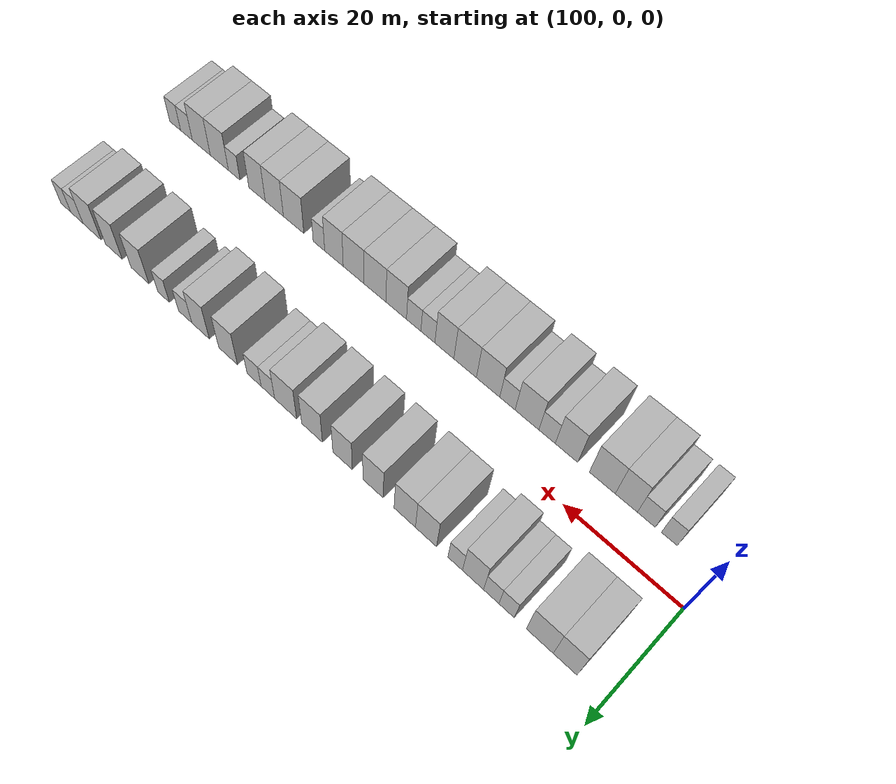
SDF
<sdf version="1.6">
 <world name="default">
  <model name="building_25">
   <static>1</static>
   <pose>106.4064 11.0000 0 0.000000 0.000000 1.570796</pose>
   <link name="link">
    <pose>0 0 4.50 0 0 0</pose>
    <collision name="collision"><geometry><box><size>10.0000 3.8263 9.0000</size></box></geometry></collision>
    <visual name="visual">
     <cast_shadows>0</cast_shadows>
     <geometry><box><size>10.0000 3.8263 9.0000</size></box></geometry>
     <material>
      <script>
       <uri>model://HANNAS_wall/materials/scripts</uri>
       <uri>model://HANNAS_wall/materials/textures</uri>
       <name>vrc/HANNAS_wall</name>
      </script>
     </material>
    </visual>
   </link>
  </model>
  <model name="building_26">
   <static>1</static>
   <pose>110.5225 11.0000 0 0.000000 0.000000 1.570796</pose>
   <link name="link">
    <pose>0 0 4.50 0 0 0</pose>
    <collision name="collision"><geometry><box><size>10.0000 4.4060 9.0000</size></box></geometry></collision>
    <visual name="visual">
     <cast_shadows>0</cast_shadows>
     <geometry><box><size>10.0000 4.4060 9.0000</size></box></geometry>
     <material>
      <script>
       <uri>model://HANNAS_wall/materials/scripts</uri>
       <uri>model://HANNAS_wall/materials/textures</uri>
       <name>vrc/HANNAS_wall</name>
      </script>
     </material>
    </visual>
   </link>
  </model>
  <model name="building_27">
   <static>1</static>
   <pose>116.0191 11.0000 0 0.000000 0.000000 1.570796</pose>
   <link name="link">
    <pose>0 0 3.00 0 0 0</pose>
    <collision name="collision"><geometry><box><size>10.0000 2.5871 6.0000</size></box></geometry></collision>
    <visual name="visual">
     <cast_shadows>0</cast_shadows>
     <geometry><box><size>10.0000 2.5871 6.0000</size></box></geometry>
     <material>
      <script>
       <uri>model://HANNAS_wall/materials/scripts</uri>
       <uri>model://HANNAS_wall/materials/textures</uri>
       <name>vrc/HANNAS_wall</name>
      </script>
     </material>
    </visual>
   </link>
  </model>
  <model name="building_28">
   <static>1</static>
   <pose>118.6194 11.0000 0 0.000000 0.000000 1.570796</pose>
   <link name="link">
    <pose>0 0 3.00 0 0 0</pose>
    <collision name="collision"><geometry><box><size>10.0000 2.6136 6.0000</size></box></geometry></collision>
    <visual name="visual">
     <cast_shadows>0</cast_shadows>
     <geometry><box><size>10.0000 2.6136 6.0000</size></box></geometry>
     <material>
      <script>
       <uri>model://HANNAS_wall/materials/scripts</uri>
       <uri>model://HANNAS_wall/materials/textures</uri>
       <name>vrc/HANNAS_wall</name>
      </script>
     </material>
    </visual>
   </link>
  </model>
  <model name="building_29">
   <static>1</static>
   <pose>121.7357 11.0000 0 0.000000 0.000000 1.570796</pose>
   <link name="link">
    <pose>0 0 4.50 0 0 0</pose>
    <collision name="collision"><geometry><box><size>10.0000 3.6191 9.0000</size></box></geometry></collision>
    <visual name="visual">
     <cast_shadows>0</cast_shadows>
     <geometry><box><size>10.0000 3.6191 9.0000</size></box></geometry>
     <material>
      <script>
       <uri>model://HANNAS_wall/materials/scripts</uri>
       <uri>model://HANNAS_wall/materials/textures</uri>
       <name>vrc/HANNAS_wall</name>
      </script>
     </material>
    </visual>
   </link>
  </model>
  <model name="building_30">
   <static>1</static>
   <pose>124.8204 11.0000 0 0.000000 0.000000 1.570796</pose>
   <link name="link">
    <pose>0 0 3.00 0 0 0</pose>
    <collision name="collision"><geometry><box><size>10.0000 2.5502 6.0000</size></box></geometry></collision>
    <visual name="visual">
     <cast_shadows>0</cast_shadows>
     <geometry><box><size>10.0000 2.5502 6.0000</size></box></geometry>
     <material>
      <script>
       <uri>model://HANNAS_wall/materials/scripts</uri>
       <uri>model://HANNAS_wall/materials/textures</uri>
       <name>vrc/HANNAS_wall</name>
      </script>
     </material>
    </visual>
   </link>
  </model>
  <model name="building_31">
   <static>1</static>
   <pose>129.9866 11.0000 0 0.000000 0.000000 1.570796</pose>
   <link name="link">
    <pose>0 0 4.50 0 0 0</pose>
    <collision name="collision"><geometry><box><size>10.0000 3.7824 9.0000</size></box></geometry></collision>
    <visual name="visual">
     <cast_shadows>0</cast_shadows>
     <geometry><box><size>10.0000 3.7824 9.0000</size></box></geometry>
     <material>
      <script>
       <uri>model://HANNAS_wall/materials/scripts</uri>
       <uri>model://HANNAS_wall/materials/textures</uri>
       <name>vrc/HANNAS_wall</name>
      </script>
     </material>
    </visual>
   </link>
  </model>
  <model name="building_32">
   <static>1</static>
   <pose>133.8148 11.0000 0 0.000000 0.000000 1.570796</pose>
   <link name="link">
    <pose>0 0 4.50 0 0 0</pose>
    <collision name="collision"><geometry><box><size>10.0000 3.8740 9.0000</size></box></geometry></collision>
    <visual name="visual">
     <cast_shadows>0</cast_shadows>
     <geometry><box><size>10.0000 3.8740 9.0000</size></box></geometry>
     <material>
      <script>
       <uri>model://HANNAS_wall/materials/scripts</uri>
       <uri>model://HANNAS_wall/materials/textures</uri>
       <name>vrc/HANNAS_wall</name>
      </script>
     </material>
    </visual>
   </link>
  </model>
  <model name="building_33">
   <static>1</static>
   <pose>139.6373 11.0000 0 0.000000 0.000000 1.570796</pose>
   <link name="link">
    <pose>0 0 4.50 0 0 0</pose>
    <collision name="collision"><geometry><box><size>10.0000 3.7710 9.0000</size></box></geometry></collision>
    <visual name="visual">
     <cast_shadows>0</cast_shadows>
     <geometry><box><size>10.0000 3.7710 9.0000</size></box></geometry>
     <material>
      <script>
       <uri>model://HANNAS_wall/materials/scripts</uri>
       <uri>model://HANNAS_wall/materials/textures</uri>
       <name>vrc/HANNAS_wall</name>
      </script>
     </material>
    </visual>
   </link>
  </model>
  <model name="building_34">
   <static>1</static>
   <pose>145.3760 11.0000 0 0.000000 0.000000 1.570796</pose>
   <link name="link">
    <pose>0 0 4.50 0 0 0</pose>
    <collision name="collision"><geometry><box><size>10.0000 3.7065 9.0000</size></box></geometry></collision>
    <visual name="visual">
     <cast_shadows>0</cast_shadows>
     <geometry><box><size>10.0000 3.7065 9.0000</size></box></geometry>
     <material>
      <script>
       <uri>model://HANNAS_wall/materials/scripts</uri>
       <uri>model://HANNAS_wall/materials/textures</uri>
       <name>vrc/HANNAS_wall</name>
      </script>
     </material>
    </visual>
   </link>
  </model>
  <model name="building_35">
   <static>1</static>
   <pose>151.2617 11.0000 0 0.000000 0.000000 1.570796</pose>
   <link name="link">
    <pose>0 0 4.50 0 0 0</pose>
    <collision name="collision"><geometry><box><size>10.0000 4.0648 9.0000</size></box></geometry></collision>
    <visual name="visual">
     <cast_shadows>0</cast_shadows>
     <geometry><box><size>10.0000 4.0648 9.0000</size></box></geometry>
     <material>
      <script>
       <uri>model://HANNAS_wall/materials/scripts</uri>
       <uri>model://HANNAS_wall/materials/textures</uri>
       <name>vrc/HANNAS_wall</name>
      </script>
     </material>
    </visual>
   </link>
  </model>
  <model name="building_36">
   <static>1</static>
   <pose>156.4872 11.0000 0 0.000000 0.000000 1.570796</pose>
   <link name="link">
    <pose>0 0 4.50 0 0 0</pose>
    <collision name="collision"><geometry><box><size>10.0000 4.3862 9.0000</size></box></geometry></collision>
    <visual name="visual">
     <cast_shadows>0</cast_shadows>
     <geometry><box><size>10.0000 4.3862 9.0000</size></box></geometry>
     <material>
      <script>
       <uri>model://HANNAS_wall/materials/scripts</uri>
       <uri>model://HANNAS_wall/materials/textures</uri>
       <name>vrc/HANNAS_wall</name>
      </script>
     </material>
    </visual>
   </link>
  </model>
  <model name="building_37">
   <static>1</static>
   <pose>160.0484 11.0000 0 0.000000 0.000000 1.570796</pose>
   <link name="link">
    <pose>0 0 3.00 0 0 0</pose>
    <collision name="collision"><geometry><box><size>10.0000 2.7362 6.0000</size></box></geometry></collision>
    <visual name="visual">
     <cast_shadows>0</cast_shadows>
     <geometry><box><size>10.0000 2.7362 6.0000</size></box></geometry>
     <material>
      <script>
       <uri>model://HANNAS_wall/materials/scripts</uri>
       <uri>model://HANNAS_wall/materials/textures</uri>
       <name>vrc/HANNAS_wall</name>
      </script>
     </material>
    </visual>
   </link>
  </model>
  <model name="building_38">
   <static>1</static>
   <pose>162.8559 11.0000 0 0.000000 0.000000 1.570796</pose>
   <link name="link">
    <pose>0 0 3.00 0 0 0</pose>
    <collision name="collision"><geometry><box><size>10.0000 2.8789 6.0000</size></box></geometry></collision>
    <visual name="visual">
     <cast_shadows>0</cast_shadows>
     <geometry><box><size>10.0000 2.8789 6.0000</size></box></geometry>
     <material>
      <script>
       <uri>model://HANNAS_wall/materials/scripts</uri>
       <uri>model://HANNAS_wall/materials/textures</uri>
       <name>vrc/HANNAS_wall</name>
      </script>
     </material>
    </visual>
   </link>
  </model>
  <model name="building_39">
   <static>1</static>
   <pose>168.2533 11.0000 0 0.000000 0.000000 1.570796</pose>
   <link name="link">
    <pose>0 0 4.50 0 0 0</pose>
    <collision name="collision"><geometry><box><size>10.0000 3.9160 9.0000</size></box></geometry></collision>
    <visual name="visual">
     <cast_shadows>0</cast_shadows>
     <geometry><box><size>10.0000 3.9160 9.0000</size></box></geometry>
     <material>
      <script>
       <uri>model://HANNAS_wall/materials/scripts</uri>
       <uri>model://HANNAS_wall/materials/textures</uri>
       <name>vrc/HANNAS_wall</name>
      </script>
     </material>
    </visual>
   </link>
  </model>
  <model name="building_40">
   <static>1</static>
   <pose>174.0844 11.0000 0 0.000000 0.000000 1.570796</pose>
   <link name="link">
    <pose>0 0 4.50 0 0 0</pose>
    <collision name="collision"><geometry><box><size>10.0000 3.7462 9.0000</size></box></geometry></collision>
    <visual name="visual">
     <cast_shadows>0</cast_shadows>
     <geometry><box><size>10.0000 3.7462 9.0000</size></box></geometry>
     <material>
      <script>
       <uri>model://HANNAS_wall/materials/scripts</uri>
       <uri>model://HANNAS_wall/materials/textures</uri>
       <name>vrc/HANNAS_wall</name>
      </script>
     </material>
    </visual>
   </link>
  </model>
  <model name="building_41">
   <static>1</static>
   <pose>177.4131 11.0000 0 0.000000 0.000000 1.570796</pose>
   <link name="link">
    <pose>0 0 3.00 0 0 0</pose>
    <collision name="collision"><geometry><box><size>10.0000 2.9111 6.0000</size></box></geometry></collision>
    <visual name="visual">
     <cast_shadows>0</cast_shadows>
     <geometry><box><size>10.0000 2.9111 6.0000</size></box></geometry>
     <material>
      <script>
       <uri>model://HANNAS_wall/materials/scripts</uri>
       <uri>model://HANNAS_wall/materials/textures</uri>
       <name>vrc/HANNAS_wall</name>
      </script>
     </material>
    </visual>
   </link>
  </model>
  <model name="building_42">
   <static>1</static>
   <pose>182.1428 11.0000 0 0.000000 0.000000 1.570796</pose>
   <link name="link">
    <pose>0 0 3.00 0 0 0</pose>
    <collision name="collision"><geometry><box><size>10.0000 2.5483 6.0000</size></box></geometry></collision>
    <visual name="visual">
     <cast_shadows>0</cast_shadows>
     <geometry><box><size>10.0000 2.5483 6.0000</size></box></geometry>
     <material>
      <script>
       <uri>model://HANNAS_wall/materials/scripts</uri>
       <uri>model://HANNAS_wall/materials/textures</uri>
       <name>vrc/HANNAS_wall</name>
      </script>
     </material>
    </visual>
   </link>
  </model>
  <model name="building_43">
   <static>1</static>
   <pose>187.4469 11.0000 0 0.000000 0.000000 1.570796</pose>
   <link name="link">
    <pose>0 0 4.50 0 0 0</pose>
    <collision name="collision"><geometry><box><size>10.0000 4.0600 9.0000</size></box></geometry></collision>
    <visual name="visual">
     <cast_shadows>0</cast_shadows>
     <geometry><box><size>10.0000 4.0600 9.0000</size></box></geometry>
     <material>
      <script>
       <uri>model://HANNAS_wall/materials/scripts</uri>
       <uri>model://HANNAS_wall/materials/textures</uri>
       <name>vrc/HANNAS_wall</name>
      </script>
     </material>
    </visual>
   </link>
  </model>
  <model name="building_44">
   <static>1</static>
   <pose>193.4263 11.0000 0 0.000000 0.000000 1.570796</pose>
   <link name="link">
    <pose>0 0 4.50 0 0 0</pose>
    <collision name="collision"><geometry><box><size>10.0000 3.8988 9.0000</size></box></geometry></collision>
    <visual name="visual">
     <cast_shadows>0</cast_shadows>
     <geometry><box><size>10.0000 3.8988 9.0000</size></box></geometry>
     <material>
      <script>
       <uri>model://HANNAS_wall/materials/scripts</uri>
       <uri>model://HANNAS_wall/materials/textures</uri>
       <name>vrc/HANNAS_wall</name>
      </script>
     </material>
    </visual>
   </link>
  </model>
  <model name="building_45">
   <static>1</static>
   <pose>198.5137 11.0000 0 0.000000 0.000000 1.570796</pose>
   <link name="link">
    <pose>0 0 4.50 0 0 0</pose>
    <collision name="collision"><geometry><box><size>10.0000 4.2759 9.0000</size></box></geometry></collision>
    <visual name="visual">
     <cast_shadows>0</cast_shadows>
     <geometry><box><size>10.0000 4.2759 9.0000</size></box></geometry>
     <material>
      <script>
       <uri>model://HANNAS_wall/materials/scripts</uri>
       <uri>model://HANNAS_wall/materials/textures</uri>
       <name>vrc/HANNAS_wall</name>
      </script>
     </material>
    </visual>
   </link>
  </model>
  <model name="building_46">
   <static>1</static>
   <pose>202.1068 11.0000 0 0.000000 0.000000 1.570796</pose>
   <link name="link">
    <pose>0 0 3.00 0 0 0</pose>
    <collision name="collision"><geometry><box><size>10.0000 2.9104 6.0000</size></box></geometry></collision>
    <visual name="visual">
     <cast_shadows>0</cast_shadows>
     <geometry><box><size>10.0000 2.9104 6.0000</size></box></geometry>
     <material>
      <script>
       <uri>model://HANNAS_wall/materials/scripts</uri>
       <uri>model://HANNAS_wall/materials/textures</uri>
       <name>vrc/HANNAS_wall</name>
      </script>
     </material>
    </visual>
   </link>
  </model>
  <model name="building_47">
   <static>1</static>
   <pose>204.7638 11.0000 0 0.000000 0.000000 1.570796</pose>
   <link name="link">
    <pose>0 0 3.00 0 0 0</pose>
    <collision name="collision"><geometry><box><size>10.0000 2.4036 6.0000</size></box></geometry></collision>
    <visual name="visual">
     <cast_shadows>0</cast_shadows>
     <geometry><box><size>10.0000 2.4036 6.0000</size></box></geometry>
     <material>
      <script>
       <uri>model://HANNAS_wall/materials/scripts</uri>
       <uri>model://HANNAS_wall/materials/textures</uri>
       <name>vrc/HANNAS_wall</name>
      </script>
     </material>
    </visual>
   </link>
  </model>
  <model name="building_73">
   <static>1</static>
   <pose>106.9545 -11.0000 0 0.000000 0.000000 1.570796</pose>
   <link name="link">
    <pose>0 0 3.00 0 0 0</pose>
    <collision name="collision"><geometry><box><size>10.0000 2.5979 6.0000</size></box></geometry></collision>
    <visual name="visual">
     <cast_shadows>0</cast_shadows>
     <geometry><box><size>10.0000 2.5979 6.0000</size></box></geometry>
     <material>
      <script>
       <uri>model://HANNAS_wall/materials/scripts</uri>
       <uri>model://HANNAS_wall/materials/textures</uri>
       <name>vrc/HANNAS_wall</name>
      </script>
     </material>
    </visual>
   </link>
  </model>
  <model name="building_74">
   <static>1</static>
   <pose>110.7385 -11.0000 0 0.000000 0.000000 1.570796</pose>
   <link name="link">
    <pose>0 0 3.00 0 0 0</pose>
    <collision name="collision"><geometry><box><size>10.0000 2.9700 6.0000</size></box></geometry></collision>
    <visual name="visual">
     <cast_shadows>0</cast_shadows>
     <geometry><box><size>10.0000 2.9700 6.0000</size></box></geometry>
     <material>
      <script>
       <uri>model://HANNAS_wall/materials/scripts</uri>
       <uri>model://HANNAS_wall/materials/textures</uri>
       <name>vrc/HANNAS_wall</name>
      </script>
     </material>
    </visual>
   </link>
  </model>
  <model name="building_75">
   <static>1</static>
   <pose>114.0870 -11.0000 0 0.000000 0.000000 1.570796</pose>
   <link name="link">
    <pose>0 0 4.50 0 0 0</pose>
    <collision name="collision"><geometry><box><size>10.0000 3.7270 9.0000</size></box></geometry></collision>
    <visual name="visual">
     <cast_shadows>0</cast_shadows>
     <geometry><box><size>10.0000 3.7270 9.0000</size></box></geometry>
     <material>
      <script>
       <uri>model://HANNAS_wall/materials/scripts</uri>
       <uri>model://HANNAS_wall/materials/textures</uri>
       <name>vrc/HANNAS_wall</name>
      </script>
     </material>
    </visual>
   </link>
  </model>
  <model name="building_76">
   <static>1</static>
   <pose>118.1685 -11.0000 0 0.000000 0.000000 1.570796</pose>
   <link name="link">
    <pose>0 0 4.50 0 0 0</pose>
    <collision name="collision"><geometry><box><size>10.0000 4.4360 9.0000</size></box></geometry></collision>
    <visual name="visual">
     <cast_shadows>0</cast_shadows>
     <geometry><box><size>10.0000 4.4360 9.0000</size></box></geometry>
     <material>
      <script>
       <uri>model://HANNAS_wall/materials/scripts</uri>
       <uri>model://HANNAS_wall/materials/textures</uri>
       <name>vrc/HANNAS_wall</name>
      </script>
     </material>
    </visual>
   </link>
  </model>
  <model name="building_77">
   <static>1</static>
   <pose>124.3698 -11.0000 0 0.000000 0.000000 1.570796</pose>
   <link name="link">
    <pose>0 0 4.50 0 0 0</pose>
    <collision name="collision"><geometry><box><size>10.0000 3.9666 9.0000</size></box></geometry></collision>
    <visual name="visual">
     <cast_shadows>0</cast_shadows>
     <geometry><box><size>10.0000 3.9666 9.0000</size></box></geometry>
     <material>
      <script>
       <uri>model://HANNAS_wall/materials/scripts</uri>
       <uri>model://HANNAS_wall/materials/textures</uri>
       <name>vrc/HANNAS_wall</name>
      </script>
     </material>
    </visual>
   </link>
  </model>
  <model name="building_78">
   <static>1</static>
   <pose>127.8058 -11.0000 0 0.000000 0.000000 1.570796</pose>
   <link name="link">
    <pose>0 0 3.00 0 0 0</pose>
    <collision name="collision"><geometry><box><size>10.0000 2.9054 6.0000</size></box></geometry></collision>
    <visual name="visual">
     <cast_shadows>0</cast_shadows>
     <geometry><box><size>10.0000 2.9054 6.0000</size></box></geometry>
     <material>
      <script>
       <uri>model://HANNAS_wall/materials/scripts</uri>
       <uri>model://HANNAS_wall/materials/textures</uri>
       <name>vrc/HANNAS_wall</name>
      </script>
     </material>
    </visual>
   </link>
  </model>
  <model name="building_79">
   <static>1</static>
   <pose>131.4158 -11.0000 0 0.000000 0.000000 1.570796</pose>
   <link name="link">
    <pose>0 0 4.50 0 0 0</pose>
    <collision name="collision"><geometry><box><size>10.0000 4.3145 9.0000</size></box></geometry></collision>
    <visual name="visual">
     <cast_shadows>0</cast_shadows>
     <geometry><box><size>10.0000 4.3145 9.0000</size></box></geometry>
     <material>
      <script>
       <uri>model://HANNAS_wall/materials/scripts</uri>
       <uri>model://HANNAS_wall/materials/textures</uri>
       <name>vrc/HANNAS_wall</name>
      </script>
     </material>
    </visual>
   </link>
  </model>
  <model name="building_80">
   <static>1</static>
   <pose>134.9793 -11.0000 0 0.000000 0.000000 1.570796</pose>
   <link name="link">
    <pose>0 0 3.00 0 0 0</pose>
    <collision name="collision"><geometry><box><size>10.0000 2.8125 6.0000</size></box></geometry></collision>
    <visual name="visual">
     <cast_shadows>0</cast_shadows>
     <geometry><box><size>10.0000 2.8125 6.0000</size></box></geometry>
     <material>
      <script>
       <uri>model://HANNAS_wall/materials/scripts</uri>
       <uri>model://HANNAS_wall/materials/textures</uri>
       <name>vrc/HANNAS_wall</name>
      </script>
     </material>
    </visual>
   </link>
  </model>
  <model name="building_81">
   <static>1</static>
   <pose>138.5589 -11.0000 0 0.000000 0.000000 1.570796</pose>
   <link name="link">
    <pose>0 0 4.50 0 0 0</pose>
    <collision name="collision"><geometry><box><size>10.0000 4.3466 9.0000</size></box></geometry></collision>
    <visual name="visual">
     <cast_shadows>0</cast_shadows>
     <geometry><box><size>10.0000 4.3466 9.0000</size></box></geometry>
     <material>
      <script>
       <uri>model://HANNAS_wall/materials/scripts</uri>
       <uri>model://HANNAS_wall/materials/textures</uri>
       <name>vrc/HANNAS_wall</name>
      </script>
     </material>
    </visual>
   </link>
  </model>
  <model name="building_82">
   <static>1</static>
   <pose>142.8710 -11.0000 0 0.000000 0.000000 1.570796</pose>
   <link name="link">
    <pose>0 0 4.50 0 0 0</pose>
    <collision name="collision"><geometry><box><size>10.0000 4.2776 9.0000</size></box></geometry></collision>
    <visual name="visual">
     <cast_shadows>0</cast_shadows>
     <geometry><box><size>10.0000 4.2776 9.0000</size></box></geometry>
     <material>
      <script>
       <uri>model://HANNAS_wall/materials/scripts</uri>
       <uri>model://HANNAS_wall/materials/textures</uri>
       <name>vrc/HANNAS_wall</name>
      </script>
     </material>
    </visual>
   </link>
  </model>
  <model name="building_83">
   <static>1</static>
   <pose>146.8404 -11.0000 0 0.000000 0.000000 1.570796</pose>
   <link name="link">
    <pose>0 0 4.50 0 0 0</pose>
    <collision name="collision"><geometry><box><size>10.0000 3.6612 9.0000</size></box></geometry></collision>
    <visual name="visual">
     <cast_shadows>0</cast_shadows>
     <geometry><box><size>10.0000 3.6612 9.0000</size></box></geometry>
     <material>
      <script>
       <uri>model://HANNAS_wall/materials/scripts</uri>
       <uri>model://HANNAS_wall/materials/textures</uri>
       <name>vrc/HANNAS_wall</name>
      </script>
     </material>
    </visual>
   </link>
  </model>
  <model name="building_84">
   <static>1</static>
   <pose>150.0351 -11.0000 0 0.000000 0.000000 1.570796</pose>
   <link name="link">
    <pose>0 0 3.00 0 0 0</pose>
    <collision name="collision"><geometry><box><size>10.0000 2.7282 6.0000</size></box></geometry></collision>
    <visual name="visual">
     <cast_shadows>0</cast_shadows>
     <geometry><box><size>10.0000 2.7282 6.0000</size></box></geometry>
     <material>
      <script>
       <uri>model://HANNAS_wall/materials/scripts</uri>
       <uri>model://HANNAS_wall/materials/textures</uri>
       <name>vrc/HANNAS_wall</name>
      </script>
     </material>
    </visual>
   </link>
  </model>
  <model name="building_85">
   <static>1</static>
   <pose>152.8164 -11.0000 0 0.000000 0.000000 1.570796</pose>
   <link name="link">
    <pose>0 0 3.00 0 0 0</pose>
    <collision name="collision"><geometry><box><size>10.0000 2.8345 6.0000</size></box></geometry></collision>
    <visual name="visual">
     <cast_shadows>0</cast_shadows>
     <geometry><box><size>10.0000 2.8345 6.0000</size></box></geometry>
     <material>
      <script>
       <uri>model://HANNAS_wall/materials/scripts</uri>
       <uri>model://HANNAS_wall/materials/textures</uri>
       <name>vrc/HANNAS_wall</name>
      </script>
     </material>
    </visual>
   </link>
  </model>
  <model name="building_86">
   <static>1</static>
   <pose>156.2886 -11.0000 0 0.000000 0.000000 1.570796</pose>
   <link name="link">
    <pose>0 0 4.50 0 0 0</pose>
    <collision name="collision"><geometry><box><size>10.0000 4.1100 9.0000</size></box></geometry></collision>
    <visual name="visual">
     <cast_shadows>0</cast_shadows>
     <geometry><box><size>10.0000 4.1100 9.0000</size></box></geometry>
     <material>
      <script>
       <uri>model://HANNAS_wall/materials/scripts</uri>
       <uri>model://HANNAS_wall/materials/textures</uri>
       <name>vrc/HANNAS_wall</name>
      </script>
     </material>
    </visual>
   </link>
  </model>
  <model name="building_87">
   <static>1</static>
   <pose>160.5684 -11.0000 0 0.000000 0.000000 1.570796</pose>
   <link name="link">
    <pose>0 0 4.50 0 0 0</pose>
    <collision name="collision"><geometry><box><size>10.0000 4.4496 9.0000</size></box></geometry></collision>
    <visual name="visual">
     <cast_shadows>0</cast_shadows>
     <geometry><box><size>10.0000 4.4496 9.0000</size></box></geometry>
     <material>
      <script>
       <uri>model://HANNAS_wall/materials/scripts</uri>
       <uri>model://HANNAS_wall/materials/textures</uri>
       <name>vrc/HANNAS_wall</name>
      </script>
     </material>
    </visual>
   </link>
  </model>
  <model name="building_88">
   <static>1</static>
   <pose>164.9482 -11.0000 0 0.000000 0.000000 1.570796</pose>
   <link name="link">
    <pose>0 0 4.50 0 0 0</pose>
    <collision name="collision"><geometry><box><size>10.0000 4.3099 9.0000</size></box></geometry></collision>
    <visual name="visual">
     <cast_shadows>0</cast_shadows>
     <geometry><box><size>10.0000 4.3099 9.0000</size></box></geometry>
     <material>
      <script>
       <uri>model://HANNAS_wall/materials/scripts</uri>
       <uri>model://HANNAS_wall/materials/textures</uri>
       <name>vrc/HANNAS_wall</name>
      </script>
     </material>
    </visual>
   </link>
  </model>
  <model name="building_89">
   <static>1</static>
   <pose>169.0483 -11.0000 0 0.000000 0.000000 1.570796</pose>
   <link name="link">
    <pose>0 0 4.50 0 0 0</pose>
    <collision name="collision"><geometry><box><size>10.0000 3.8902 9.0000</size></box></geometry></collision>
    <visual name="visual">
     <cast_shadows>0</cast_shadows>
     <geometry><box><size>10.0000 3.8902 9.0000</size></box></geometry>
     <material>
      <script>
       <uri>model://HANNAS_wall/materials/scripts</uri>
       <uri>model://HANNAS_wall/materials/textures</uri>
       <name>vrc/HANNAS_wall</name>
      </script>
     </material>
    </visual>
   </link>
  </model>
  <model name="building_90">
   <static>1</static>
   <pose>172.2153 -11.0000 0 0.000000 0.000000 1.570796</pose>
   <link name="link">
    <pose>0 0 3.00 0 0 0</pose>
    <collision name="collision"><geometry><box><size>10.0000 2.4437 6.0000</size></box></geometry></collision>
    <visual name="visual">
     <cast_shadows>0</cast_shadows>
     <geometry><box><size>10.0000 2.4437 6.0000</size></box></geometry>
     <material>
      <script>
       <uri>model://HANNAS_wall/materials/scripts</uri>
       <uri>model://HANNAS_wall/materials/textures</uri>
       <name>vrc/HANNAS_wall</name>
      </script>
     </material>
    </visual>
   </link>
  </model>
  <model name="building_91">
   <static>1</static>
   <pose>177.6522 -11.0000 0 0.000000 0.000000 1.570796</pose>
   <link name="link">
    <pose>0 0 4.50 0 0 0</pose>
    <collision name="collision"><geometry><box><size>10.0000 4.4301 9.0000</size></box></geometry></collision>
    <visual name="visual">
     <cast_shadows>0</cast_shadows>
     <geometry><box><size>10.0000 4.4301 9.0000</size></box></geometry>
     <material>
      <script>
       <uri>model://HANNAS_wall/materials/scripts</uri>
       <uri>model://HANNAS_wall/materials/textures</uri>
       <name>vrc/HANNAS_wall</name>
      </script>
     </material>
    </visual>
   </link>
  </model>
  <model name="building_92">
   <static>1</static>
   <pose>181.8757 -11.0000 0 0.000000 0.000000 1.570796</pose>
   <link name="link">
    <pose>0 0 4.50 0 0 0</pose>
    <collision name="collision"><geometry><box><size>10.0000 4.0170 9.0000</size></box></geometry></collision>
    <visual name="visual">
     <cast_shadows>0</cast_shadows>
     <geometry><box><size>10.0000 4.0170 9.0000</size></box></geometry>
     <material>
      <script>
       <uri>model://HANNAS_wall/materials/scripts</uri>
       <uri>model://HANNAS_wall/materials/textures</uri>
       <name>vrc/HANNAS_wall</name>
      </script>
     </material>
    </visual>
   </link>
  </model>
  <model name="building_93">
   <static>1</static>
   <pose>185.7185 -11.0000 0 0.000000 0.000000 1.570796</pose>
   <link name="link">
    <pose>0 0 4.50 0 0 0</pose>
    <collision name="collision"><geometry><box><size>10.0000 3.6686 9.0000</size></box></geometry></collision>
    <visual name="visual">
     <cast_shadows>0</cast_shadows>
     <geometry><box><size>10.0000 3.6686 9.0000</size></box></geometry>
     <material>
      <script>
       <uri>model://HANNAS_wall/materials/scripts</uri>
       <uri>model://HANNAS_wall/materials/textures</uri>
       <name>vrc/HANNAS_wall</name>
      </script>
     </material>
    </visual>
   </link>
  </model>
  <model name="building_94">
   <static>1</static>
   <pose>190.8725 -11.0000 0 0.000000 0.000000 1.570796</pose>
   <link name="link">
    <pose>0 0 3.00 0 0 0</pose>
    <collision name="collision"><geometry><box><size>10.0000 2.6393 6.0000</size></box></geometry></collision>
    <visual name="visual">
     <cast_shadows>0</cast_shadows>
     <geometry><box><size>10.0000 2.6393 6.0000</size></box></geometry>
     <material>
      <script>
       <uri>model://HANNAS_wall/materials/scripts</uri>
       <uri>model://HANNAS_wall/materials/textures</uri>
       <name>vrc/HANNAS_wall</name>
      </script>
     </material>
    </visual>
   </link>
  </model>
  <model name="building_95">
   <static>1</static>
   <pose>194.2846 -11.0000 0 0.000000 0.000000 1.570796</pose>
   <link name="link">
    <pose>0 0 4.50 0 0 0</pose>
    <collision name="collision"><geometry><box><size>10.0000 4.1848 9.0000</size></box></geometry></collision>
    <visual name="visual">
     <cast_shadows>0</cast_shadows>
     <geometry><box><size>10.0000 4.1848 9.0000</size></box></geometry>
     <material>
      <script>
       <uri>model://HANNAS_wall/materials/scripts</uri>
       <uri>model://HANNAS_wall/materials/textures</uri>
       <name>vrc/HANNAS_wall</name>
      </script>
     </material>
    </visual>
   </link>
  </model>
  <model name="building_96">
   <static>1</static>
   <pose>198.4864 -11.0000 0 0.000000 0.000000 1.570796</pose>
   <link name="link">
    <pose>0 0 4.50 0 0 0</pose>
    <collision name="collision"><geometry><box><size>10.0000 4.2189 9.0000</size></box></geometry></collision>
    <visual name="visual">
     <cast_shadows>0</cast_shadows>
     <geometry><box><size>10.0000 4.2189 9.0000</size></box></geometry>
     <material>
      <script>
       <uri>model://HANNAS_wall/materials/scripts</uri>
       <uri>model://HANNAS_wall/materials/textures</uri>
       <name>vrc/HANNAS_wall</name>
      </script>
     </material>
    </visual>
   </link>
  </model>
  <model name="building_97">
   <static>1</static>
   <pose>201.9862 -11.0000 0 0.000000 0.000000 1.570796</pose>
   <link name="link">
    <pose>0 0 3.00 0 0 0</pose>
    <collision name="collision"><geometry><box><size>10.0000 2.7807 6.0000</size></box></geometry></collision>
    <visual name="visual">
     <cast_shadows>0</cast_shadows>
     <geometry><box><size>10.0000 2.7807 6.0000</size></box></geometry>
     <material>
      <script>
       <uri>model://HANNAS_wall/materials/scripts</uri>
       <uri>model://HANNAS_wall/materials/textures</uri>
       <name>vrc/HANNAS_wall</name>
      </script>
     </material>
    </visual>
   </link>
  </model>
  <model name="building_98">
   <static>1</static>
   <pose>204.6872 -11.0000 0 0.000000 0.000000 1.570796</pose>
   <link name="link">
    <pose>0 0 3.00 0 0 0</pose>
    <collision name="collision"><geometry><box><size>10.0000 2.6212 6.0000</size></box></geometry></collision>
    <visual name="visual">
     <cast_shadows>0</cast_shadows>
     <geometry><box><size>10.0000 2.6212 6.0000</size></box></geometry>
     <material>
      <script>
       <uri>model://HANNAS_wall/materials/scripts</uri>
       <uri>model://HANNAS_wall/materials/textures</uri>
       <name>vrc/HANNAS_wall</name>
      </script>
     </material>
    </visual>
   </link>
  </model>
 </world>
</sdf>
